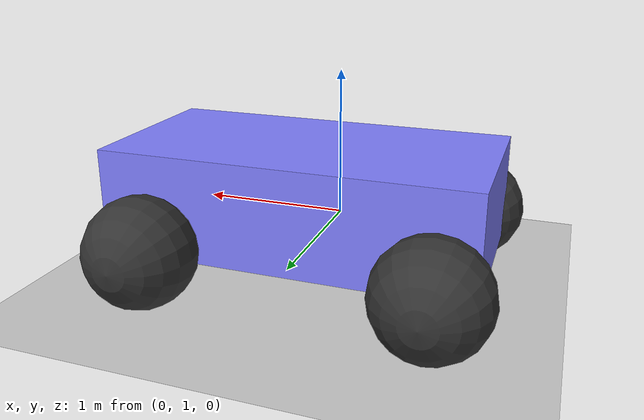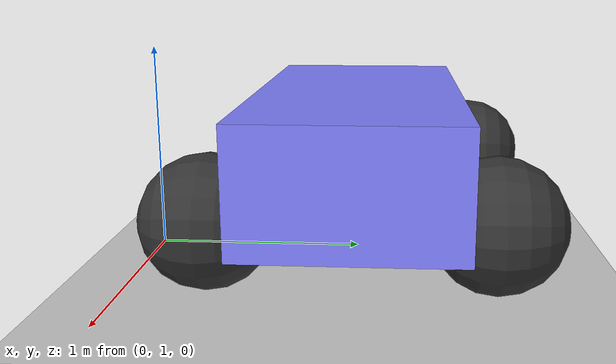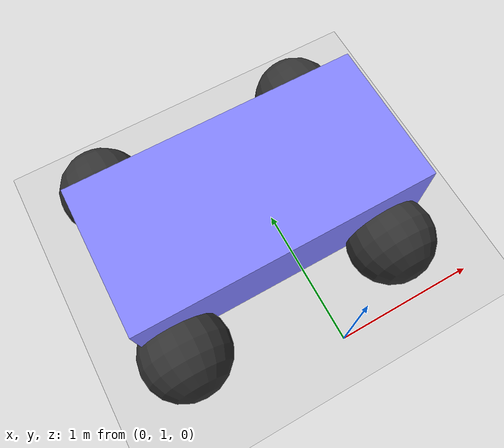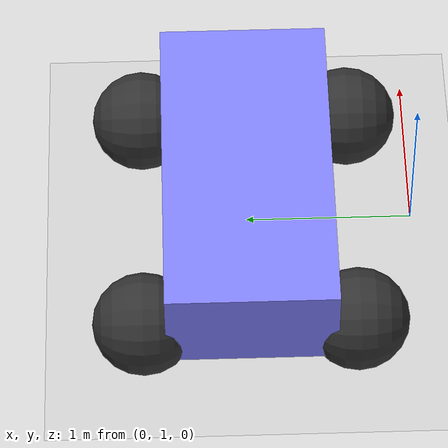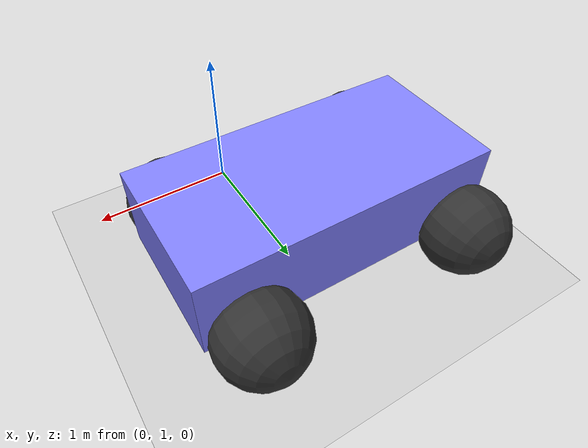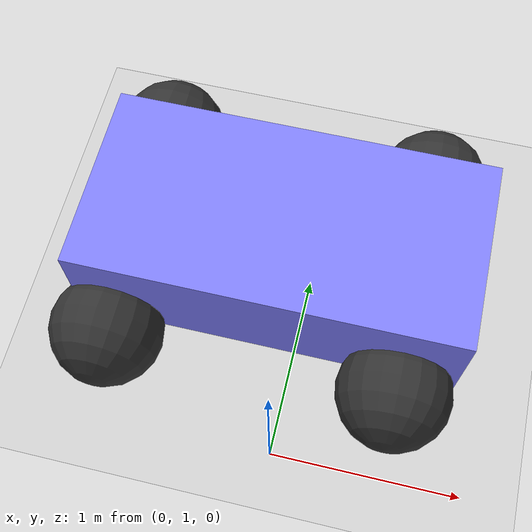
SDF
<?xml version="1.0" ?>
<sdf version="1.8">
  <world name="Moving_robot">
    <physics name="1ms" type="ignored">
      <max_step_size>0.001</max_step_size>
      <real_time_factor>1.0</real_time_factor>
    </physics>
    <plugin filename="libignition-gazebo-physics-system.so" name="ignition::gazebo::systems::Physics">
    </plugin>
    <plugin filename="libignition-gazebo-user-commands-system.so" name="ignition::gazebo::systems::UserCommands">
    </plugin>
    <plugin filename="libignition-gazebo-scene-broadcaster-system.so" name="ignition::gazebo::systems::SceneBroadcaster">
    </plugin>

    <light type="directional" name="sun">
      <cast_shadows>true</cast_shadows>
      <pose>0 0 10 0 0 0</pose>
      <diffuse>0.8 0.8 0.8 1</diffuse>
      <specular>0.2 0.2 0.2 1</specular>
      <attenuation>
        <range>1000</range>
        <constant>0.9</constant>
        <linear>0.01</linear>
        <quadratic>0.001</quadratic>
      </attenuation>
      <direction>-0.5 0.1 -0.9</direction>
    </light>

    <model name="ground_plane">
      <static>true</static>
      <link name="link">
        <collision name="collision">
          <geometry>
            <plane>
              <normal>0 0 1</normal>
            </plane>
          </geometry>
        </collision>
        <visual name="visual">
          <geometry>
            <plane>
              <normal>0 0 1</normal>
              <size>100 100</size>
            </plane>
          </geometry>
          <material>
            <ambient>0.8 0.8 0.8 1</ambient>
            <diffuse>0.8 0.8 0.8 1</diffuse>
            <specular>0.8 0.8 0.8 1</specular>
          </material>
        </visual>
      </link>
    </model>

    <model name='vehicle_blue'
      xmlns:ignition="http://ignitionrobotics.org/schema">
      <pose>0 2 0.325 0 -0 0</pose>

      <link name='chassis'>
        <pose>-0.151427 -0 0.175 0 -0 0</pose>
        <inertial>
          <mass>1.14395</mass>
          <inertia>
            <ixx>0.126164</ixx>
            <ixy>0</ixy>
            <ixz>0</ixz>
            <iyy>0.416519</iyy>
            <iyz>0</iyz>
            <izz>0.481014</izz>
          </inertia>
        </inertial>
        <visual name='visual'>
          <geometry>
            <box>
              <size>2.01142 1 0.568726</size>
            </box>
          </geometry>
          <material>
            <ambient>0.5 0.5 1.0 1</ambient>
            <diffuse>0.5 0.5 1.0 1</diffuse>
            <specular>0.0 0.0 1.0 1</specular>
          </material>
        </visual>
        <collision name='collision'>
          <geometry>
            <box>
              <size>2.01142 1 0.568726</size>
            </box>
          </geometry>
        </collision>
      </link>

      <link name='front_left_wheel'>
        <pose>0.554283 0.625029 -0.025 -1.5707 0 0</pose>
        <inertial>
          <mass>2</mass>
          <inertia>
            <ixx>0.145833</ixx>
            <ixy>0</ixy>
            <ixz>0</ixz>
            <iyy>0.145833</iyy>
            <iyz>0</iyz>
            <izz>0.125</izz>
          </inertia>
        </inertial>
        <visual name='visual'>
          <geometry>
            <sphere>
              <radius>0.3</radius>
            </sphere>
          </geometry>
          <material>
            <ambient>0.2 0.2 0.2 1</ambient>
            <diffuse>0.2 0.2 0.2 1</diffuse>
            <specular>0.2 0.2 0.2 1</specular>
          </material>
        </visual>
        <collision name='collision'>
          <geometry>
            <sphere>
              <radius>0.3</radius>
            </sphere>
          </geometry>
          <surface>
            <friction>
              <ode>
                <mu>1.0</mu>
                <mu2>0.0</mu2>
                <fdir1 ignition:expressed_in="chassis">1 -1 0</fdir1>
              </ode>
            </friction>
          </surface>
        </collision>
      </link>

      <link name='rear_left_wheel'>
        <pose>-0.957138 0.625029 -0.025 -1.5707 0 0</pose>
        <inertial>
          <mass>2</mass>
          <inertia>
            <ixx>0.145833</ixx>
            <ixy>0</ixy>
            <ixz>0</ixz>
            <iyy>0.145833</iyy>
            <iyz>0</iyz>
            <izz>0.125</izz>
          </inertia>
        </inertial>
        <visual name='visual'>
          <geometry>
            <sphere>
              <radius>0.3</radius>
            </sphere>
          </geometry>
          <material>
            <ambient>0.2 0.2 0.2 1</ambient>
            <diffuse>0.2 0.2 0.2 1</diffuse>
            <specular>0.2 0.2 0.2 1</specular>
          </material>
        </visual>
        <collision name='collision'>
          <geometry>
            <sphere>
              <radius>0.3</radius>
            </sphere>
          </geometry>
          <surface>
            <friction>
              <ode>
                <mu>1.0</mu>
                <mu2>0.0</mu2>
                <fdir1 ignition:expressed_in="chassis">1 1 0</fdir1>
              </ode>
            </friction>
          </surface>
        </collision>
      </link>

      <link name='front_right_wheel'>
        <pose>0.554282 -0.625029 -0.025 -1.5707 0 0</pose>
        <inertial>
          <mass>2</mass>
          <inertia>
            <ixx>0.145833</ixx>
            <ixy>0</ixy>
            <ixz>0</ixz>
            <iyy>0.145833</iyy>
            <iyz>0</iyz>
            <izz>0.125</izz>
          </inertia>
        </inertial>
        <visual name='visual'>
          <geometry>
            <sphere>
              <radius>0.3</radius>
            </sphere>
          </geometry>
          <material>
            <ambient>0.2 0.2 0.2 1</ambient>
            <diffuse>0.2 0.2 0.2 1</diffuse>
            <specular>0.2 0.2 0.2 1</specular>
          </material>
        </visual>
        <collision name='collision'>
          <geometry>
            <sphere>
              <radius>0.3</radius>
            </sphere>
          </geometry>
          <surface>
            <friction>
              <ode>
                <mu>1.0</mu>
                <mu2>0.0</mu2>
                <fdir1 ignition:expressed_in="chassis">1 1 0</fdir1>
              </ode>
            </friction>
          </surface>
        </collision>
      </link>

      <link name='rear_right_wheel'>
        <pose>-0.957138 -0.625029 -0.025 -1.5707 0 0</pose>
        <inertial>
          <mass>2</mass>
          <inertia>
            <ixx>0.145833</ixx>
            <ixy>0</ixy>
            <ixz>0</ixz>
            <iyy>0.145833</iyy>
            <iyz>0</iyz>
            <izz>0.125</izz>
          </inertia>
        </inertial>
        <visual name='visual'>
          <geometry>
            <sphere>
              <radius>0.3</radius>
            </sphere>
          </geometry>
          <material>
            <ambient>0.2 0.2 0.2 1</ambient>
            <diffuse>0.2 0.2 0.2 1</diffuse>
            <specular>0.2 0.2 0.2 1</specular>
          </material>
        </visual>
        <collision name='collision'>
          <geometry>
            <sphere>
              <radius>0.3</radius>
            </sphere>
          </geometry>
          <surface>
            <friction>
              <ode>
                <mu>1.0</mu>
                <mu2>0.0</mu2>
                <fdir1 ignition:expressed_in="chassis">1 -1 0</fdir1>
              </ode>
            </friction>
          </surface>
        </collision>
      </link>

      <joint name='front_left_wheel_joint' type='revolute'>
        <parent>chassis</parent>
        <child>front_left_wheel</child>
        <axis>
          <xyz>0 0 1</xyz>
          <limit>
            <lower>-1.79769e+308</lower>
            <upper>1.79769e+308</upper>
          </limit>
        </axis>
      </joint>

      <joint name='front_right_wheel_joint' type='revolute'>
        <parent>chassis</parent>
        <child>front_right_wheel</child>
        <axis>
          <xyz>0 0 1</xyz>
          <limit>
            <lower>-1.79769e+308</lower>
            <upper>1.79769e+308</upper>
          </limit>
        </axis>
      </joint>

      <joint name='rear_left_wheel_joint' type='revolute'>
        <parent>chassis</parent>
        <child>rear_left_wheel</child>
        <axis>
          <xyz>0 0 1</xyz>
          <limit>
            <lower>-1.79769e+308</lower>
            <upper>1.79769e+308</upper>
          </limit>
        </axis>
      </joint>

      <joint name='rear_right_wheel_joint' type='revolute'>
        <parent>chassis</parent>
        <child>rear_right_wheel</child>
        <axis>
          <xyz>0 0 1</xyz>
          <limit>
            <lower>-1.79769e+308</lower>
            <upper>1.79769e+308</upper>
          </limit>
        </axis>
      </joint>

      <!--mecanum drive plugin-->
      <plugin filename="ignition-gazebo-mecanum-drive-system" name="ignition::gazebo::systems::MecanumDrive">
        <front_left_joint>front_left_wheel_joint</front_left_joint>
        <front_right_joint>front_right_wheel_joint</front_right_joint>
        <back_left_joint>rear_left_wheel_joint</back_left_joint>
        <back_right_joint>rear_right_wheel_joint</back_right_joint>
        <wheel_separation>1.25</wheel_separation>
        <wheelbase>1.511</wheelbase>
        <wheel_radius>0.3</wheel_radius>
        <min_acceleration>-5</min_acceleration>
        <max_acceleration>5</max_acceleration>
        <topic>cmd_vel</topic>
      </plugin>
    </model>

    <!-- Moving Forward-->
    <plugin filename="libignition-gazebo-triggered-publisher-system.so" name="ignition::gazebo::systems::TriggeredPublisher">
      <input type="ignition.msgs.Int32" topic="/keyboard/keypress">
        <match field="data">16777235</match>
      </input>
      <output type="ignition.msgs.Twist" topic="/cmd_vel">
                linear: {x: 0.5}, angular: {z: 0.0}
      </output>
    </plugin>

    <!-- Moving Backward-->
    <plugin filename="libignition-gazebo-triggered-publisher-system.so" name="ignition::gazebo::systems::TriggeredPublisher">
      <input type="ignition.msgs.Int32" topic="/keyboard/keypress">
        <match field="data">16777237</match>
      </input>
      <output type="ignition.msgs.Twist" topic="/cmd_vel">
                linear: {x: -0.5}, angular: {z: 0.0}
      </output>
    </plugin>

    <!-- Rotating right-->
    <plugin filename="libignition-gazebo-triggered-publisher-system.so" name="ignition::gazebo::systems::TriggeredPublisher">
      <input type="ignition.msgs.Int32" topic="/keyboard/keypress">
        <match field="data">16777236</match>
      </input>
      <output type="ignition.msgs.Twist" topic="/cmd_vel">
                linear: {x: 0.0}, angular: {z: -0.5}
      </output>
    </plugin>

    <!--Rotating left-->
    <plugin filename="libignition-gazebo-triggered-publisher-system.so" name="ignition::gazebo::systems::TriggeredPublisher">
      <input type="ignition.msgs.Int32" topic="/keyboard/keypress">
        <match field="data">16777234</match>
      </input>
      <output type="ignition.msgs.Twist" topic="/cmd_vel">
                linear: {x: 0.0}, angular: {z: 0.5}
      </output>
    </plugin>
  </world>
</sdf>
